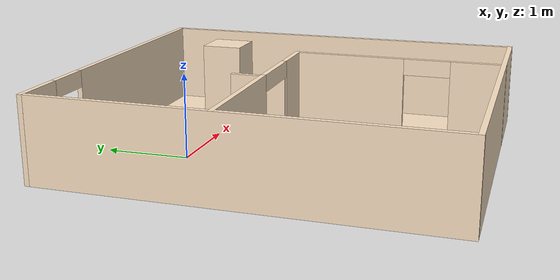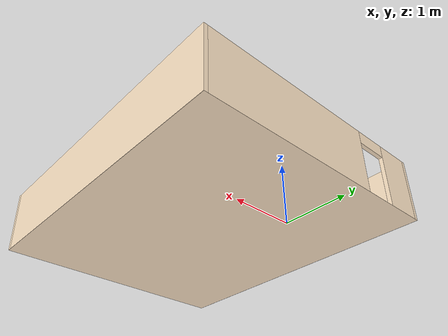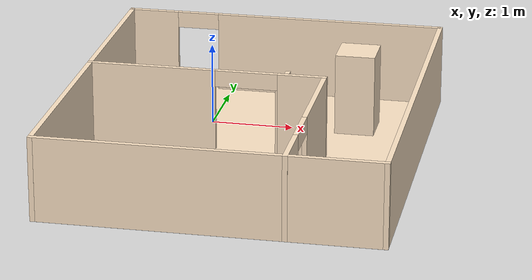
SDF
<?xml version='1.0'?>
<sdf version='1.7'>
  <model name='wall_scaled'>
    <!-- 모델 전체 포즈 (스케일링 적용) -->
    <pose>0.665984 -1.08792 0 0 -0 0</pose>

    <!-- 바닥 링크 -->
    <link name="floor">
      <collision name="floor_collision">
        <geometry>
          <box>
            <size>4.0 4.7 0.0004</size>
          </box>
        </geometry>
        <pose>0 0.000834 0.0 0 0 0</pose>
      </collision>
      <visual name="floor_visual">
        <geometry>
          <box>
            <size>4.0 4.7 0.0004</size> <!-- 동일 -->
          </box>
        </geometry>
        <material>
          <script>
            <uri>file://media/materials/scripts/gazebo.material</uri>
            <name>Gazebo/Grey</name> <!-- 벽과 같은 색상 -->
          </script>
          <ambient>1 0.901961 0.780392 1</ambient>
        </material>
        <pose>0 0.000834 0.0 0 0 0</pose> <!-- 동일 -->
      </visual>
    </link>

    <!-- Wall_11 링크 -->
    <link name='Wall_11'>
      <collision name='Wall_11_Collision'>
        <geometry>
          <box>
            <size>4.7 0.06 1.0</size>
          </box>
        </geometry>
        <pose>0 0 0.5 0 -0 0</pose>
      </collision>
      <visual name='Wall_11_Visual'>
        <pose>0 0 0.5 0 -0 0</pose> <!-- 동일 -->
        <geometry>
          <box>
            <size>4.7 0.06 1.0</size> <!-- 동일 -->
          </box>
        </geometry>
        <material>
          <script>
            <uri>file://media/materials/scripts/gazebo.material</uri>
            <name>Gazebo/Grey</name>
          </script>
          <ambient>1 0.901961 0.780392 1</ambient>
        </material>
        <meta>
          <layer>0</layer>
        </meta>
      </visual>
      <pose>-1.97532 0.000834 0 0 -0 -1.5708</pose> <!-- x:-4.9383*0.4≈-1.97532, y:0.002085*0.4≈0.000834, z:0*0.4=0, yaw:-1.5708 -->
    </link>

    <!-- Wall_13 링크 -->
    <link name='Wall_13'>
      <collision name='Wall_13_Collision'>
        <geometry>
          <box>
            <size>4.7 0.06 1.0</size> <!-- 동일 -->
          </box>
        </geometry>
        <pose>0 0 0.5 0 -0 0</pose> <!-- 동일 -->
      </collision>
      <visual name='Wall_13_Visual'>
        <pose>0 0 0.5 0 -0 0</pose> <!-- 동일 -->
        <geometry>
          <box>
            <size>4.7 0.06 1.0</size> <!-- 동일 -->
          </box>
        </geometry>
        <material>
          <script>
            <uri>file://media/materials/scripts/gazebo.material</uri>
            <name>Gazebo/Grey</name>
          </script>
          <ambient>1 0.901961 0.780392 1</ambient>
        </material>
        <meta>
          <layer>0</layer>
        </meta>
      </visual>
      <pose>1.97532 0.000834 0 0 -0 -1.5708</pose> <!-- x:4.9383*0.4≈1.97532, y:0.002085*0.4≈0.000834, yaw:-1.5708 -->
    </link>

    <!-- Wall_17 링크 -->
    <link name='Wall_17'>
      <collision name='Wall_17_Collision'>
        <geometry>
          <box>
            <size>4.01064 0.06 1.0</size>
          </box>
        </geometry>
        <pose>0 0 0.5 0 -0 0</pose> <!-- 동일 -->
      </collision>
      <visual name='Wall_17_Visual'>
        <pose>0 0 0.5 0 -0 0</pose> <!-- 동일 -->
        <geometry>
          <box>
            <size>4.01064 0.06 1.0</size> <!-- 동일 -->
          </box>
        </geometry>
        <material>
          <script>
            <uri>file://media/materials/scripts/gazebo.material</uri>
            <name>Gazebo/Grey</name>
          </script>
          <ambient>1 0.901961 0.780392 1</ambient>
        </material>
        <meta>
          <layer>0</layer>
        </meta>
      </visual>
      <pose>0 -2.31916 0 0 -0 0</pose>
    </link>

    <!-- Wall_25 링크 -->
    <link name='Wall_25'>
      <pose>0.86568 -1.050836 0 0 -0 1.5708</pose> <!-- x:2.1642*0.4≈0.86568, y:-2.62709*0.4≈-1.050836, yaw:1.5708 -->

      <!-- Wall_25_Visual_0 -->
      <visual name='Wall_25_Visual_0'>
        <pose>-0.97362 0 0.5 0 -0 0</pose>
        <geometry>
          <box>
            <size>0.652764 0.06 1.0</size>
          </box>
        </geometry>
        <material>
          <script>
            <uri>file://media/materials/scripts/gazebo.material</uri>
            <name>Gazebo/Grey</name>
          </script>
          <ambient>1 0.901961 0.780392 1</ambient>
        </material>
        <meta>
          <layer>0</layer>
        </meta>
      </visual>

      <!-- Wall_25_Collision_0 -->
      <collision name='Wall_25_Collision_0'>
        <geometry>
          <box>
            <size>0.652764 0.06 1.0</size> <!-- 동일 -->
          </box>
        </geometry>
        <pose>-0.97362 0 0.5 0 -0 0</pose> <!-- 동일 -->
      </collision>

      <!-- Wall_25_Visual_1 -->
      <visual name='Wall_25_Visual_1'>
        <pose>0.60752 0 0.5 0 -0 0</pose>
        <geometry>
          <box>
            <size>1.38496 0.06 1.0</size>
          </box>
        </geometry>
        <material>
          <script>
            <uri>file://media/materials/scripts/gazebo.material</uri>
            <name>Gazebo/Grey</name>
          </script>
          <ambient>1 0.901961 0.780392 1</ambient>
        </material>
        <meta>
          <layer>0</layer>
        </meta>
      </visual>

      <!-- Wall_25_Collision_1 -->
      <collision name='Wall_25_Collision_1'>
        <geometry>
          <box>
            <size>1.38496 0.06 1.0</size> <!-- 동일 -->
          </box>
        </geometry>
        <pose>0.60752 0 0.5 0 -0 0</pose> <!-- 동일 -->
      </collision>

      <!-- Wall_25_Visual_2 -->
      <visual name='Wall_25_Visual_2'>
        <pose>-0.366099 0 0.9 0 -0 0</pose>
        <geometry>
          <box>
            <size>0.562276 0.06 0.2</size>
          </box>
        </geometry>
        <material>
          <script>
            <uri>file://media/materials/scripts/gazebo.material</uri>
            <name>Gazebo/Grey</name>
          </script>
          <ambient>1 0.901961 0.780392 1</ambient>
        </material>
        <meta>
          <layer>0</layer>
        </meta>
      </visual>

      <!-- Wall_25_Collision_2 -->
      <collision name='Wall_25_Collision_2'>
        <geometry>
          <box>
            <size>0.562276 0.06 0.2</size> <!-- 동일 -->
          </box>
        </geometry>
        <pose>-0.366099 0 0.9 0 -0 0</pose> <!-- 동일 -->
      </collision>
    </link>

    <!-- Wall_26 링크 -->
    <link name='Wall_26'>
      <pose>-0.55432 0.219166 0 0 -0 3.14159</pose> <!-- x:-1.3858*0.4≈-0.55432, y:0.547915*0.4≈0.219166, yaw:3.14159 -->

      <collision name='Wall_26_Collision_0'>
        <geometry>
          <box>
            <size>0.588512 0.06 1.0</size>
          </box>
        </geometry>
        <pose>-1.155744 0 0.5 0 -0 0</pose>
      </collision>
      <visual name='Wall_26_Visual_0'>
        <pose>-1.155744 0 0.5 0 -0 0</pose> <!-- 동일 -->
        <geometry>
          <box>
            <size>0.588512 0.06 1.0</size> <!-- 동일 -->
          </box>
        </geometry>
        <material>
          <script>
            <uri>file://media/materials/scripts/gazebo.material</uri>
            <name>Gazebo/Grey</name>
          </script>
          <ambient>1 0.901961 0.780392 1</ambient>
        </material>
        <meta>
          <layer>0</layer>
        </meta>
      </visual>

      <collision name='Wall_26_Collision_1'>
        <geometry>
          <box>
            <size>1.563116 0.06 1.0</size>
          </box>
        </geometry>
        <pose>0.668444 0 0.5 0 -0 3.14159</pose> <!-- x:0.668444, y:0, z:0.5, yaw:3.14159 -->
      </collision>
      <visual name='Wall_26_Visual_1'>
        <pose>0.668444 0 0.5 0 -0 3.14159</pose> <!-- x:1.67111*0.4≈0.668444, y:0, z:1.25*0.4=0.5, yaw:3.14159 -->
        <geometry>
          <box>
            <size>1.563116 0.06 1.0</size> <!-- 동일 -->
          </box>
        </geometry>
        <material>
          <script>
            <uri>file://media/materials/scripts/gazebo.material</uri>
            <name>Gazebo/Grey</name>
          </script>
          <ambient>1 0.901961 0.780392 1</ambient>
        </material>
        <meta>
          <layer>0</layer>
        </meta>
      </visual>

      <collision name='Wall_26_Collision_2'>
        <geometry>
          <box>
            <size>0.748372 0.06 0.2</size>
          </box>
        </geometry>
        <pose>-0.487298 0 0.9 0 -0 0</pose>
      </collision>
      <visual name='Wall_26_Visual_2'>
        <pose>-0.487298 0 0.9 0 -0 0</pose> <!-- 동일 -->
        <geometry>
          <box>
            <size>0.748372 0.06 0.2</size> <!-- 동일 -->
          </box>
        </geometry>
        <material>
          <script>
            <uri>file://media/materials/scripts/gazebo.material</uri>
            <name>Gazebo/Grey</name>
          </script>
          <ambient>1 0.901961 0.780392 1</ambient>
        </material>
        <meta>
          <layer>0</layer>
        </meta>
      </visual>
    </link>

    <!-- Wall_28 링크 -->
    <link name='Wall_28'>
      <collision name='Wall_28_Collision'>
        <geometry>
          <box>
            <size>0.7 0.06 0.8</size>
          </box>
        </geometry>
        <pose>0 0 0.4 0 -0 0</pose>
      </collision>
      <visual name='Wall_28_Visual'>
        <pose>0 0 0.4 0 -0 0</pose> <!-- 동일 -->
        <geometry>
          <box>
            <size>0.7 0.06 0.8</size> <!-- 동일 -->
          </box>
        </geometry>
        <material>
          <script>
            <uri>file://media/materials/scripts/gazebo.material</uri>
            <name>Gazebo/Grey</name>
          </script>
          <ambient>1 0.901961 0.780392 1</ambient>
        </material>
        <meta>
          <layer>0</layer>
        </meta>
      </visual>
      <pose>0.3092168 0.55352 0 0 -0 1.5708</pose> <!-- x:0.773042*0.4≈0.3092168, y:1.3838*0.4≈0.55352, yaw:1.5708 -->
    </link>

    <!-- Wall_32 링크 -->
    <link name='Wall_32'>
      <collision name='Wall_32_Collision'>
        <geometry>
          <box>
            <size>0.5 0.48 1.0</size>
          </box>
        </geometry>
        <pose>0 0 0.5 0 -0 0</pose>
      </collision>
      <visual name='Wall_32_Visual'>
        <pose>0 0 0.5 0 -0 0</pose> <!-- 동일 -->
        <geometry>
          <box>
            <size>0.5 0.48 1.0</size> <!-- 동일 -->
          </box>
        </geometry>
        <material>
          <script>
            <uri>file://media/materials/scripts/gazebo.material</uri>
            <name>Gazebo/Grey</name>
          </script>
          <ambient>1 0.901961 0.780392 1</ambient>
        </material>
        <meta>
          <layer>0</layer>
        </meta>
      </visual>
      <pose>1.106388 1.254576 0 0 -0 -1.5708</pose> <!-- x:2.76597*0.4≈1.106388, y:3.13644*0.4≈1.254576, yaw:-1.5708 -->
    </link>

    <!-- Wall_9 링크 -->
    <link name='Wall_9'>
      <pose>0 2.32083 0 0 -0 0</pose>

      <visual name='Wall_9_Visual_0'>
        <pose>-1.68861 0 0.5 0 -0 0</pose>
        <geometry>
          <box>
            <size>0.633416 0.06 1.0</size>
          </box>
        </geometry>
        <material>
          <script>
            <uri>file://media/materials/scripts/gazebo.material</uri>
            <name>Gazebo/Grey</name>
          </script>
          <ambient>1 0.901961 0.780392 1</ambient>
        </material>
        <meta>
          <layer>0</layer>
        </meta>
      </visual>

      <collision name='Wall_9_Collision_0'>
        <geometry>
          <box>
            <size>0.633416 0.06 1.0</size> <!-- 동일 -->
          </box>
        </geometry>
        <pose>-1.68861 0 0.5 0 -0 0</pose> <!-- 동일 -->
      </collision>

      <visual name='Wall_9_Visual_1'>
        <pose>0.57762 0 0.5 0 -0 0</pose>
        <geometry>
          <box>
            <size>2.855404 0.06 1.0</size>
          </box>
        </geometry>
        <material>
          <script>
            <uri>file://media/materials/scripts/gazebo.material</uri>
            <name>Gazebo/Grey</name>
          </script>
          <ambient>1 0.901961 0.780392 1</ambient>
        </material>
        <meta>
          <layer>0</layer>
        </meta>
      </visual>

      <collision name='Wall_9_Collision_1'>
        <geometry>
          <box>
            <size>2.855404 0.06 1.0</size> <!-- 동일 -->
          </box>
        </geometry>
        <pose>0.57762 0 0.5 0 -0 0</pose> <!-- 동일 -->
      </collision>

      <visual name='Wall_9_Visual_2'>
        <pose>-1.11099 0 0.9 0 -0 0</pose>
        <geometry>
          <box>
            <size>0.521824 0.06 0.2</size>
          </box>
        </geometry>
        <material>
          <script>
            <uri>file://media/materials/scripts/gazebo.material</uri>
            <name>Gazebo/Grey</name>
          </script>
          <ambient>1 0.901961 0.780392 1</ambient>
        </material>
        <meta>
          <layer>0</layer>
        </meta>
      </visual>

      <collision name='Wall_9_Collision_2'>
        <geometry>
          <box>
            <size>0.521824 0.06 0.2</size> <!-- 동일 -->
          </box>
        </geometry>
        <pose>-1.11099 0 0.9 0 -0 0</pose> <!-- 동일 -->
      </collision>
    </link>

    <!-- 전체 모델을 정적으로 설정 -->
    <static>true</static>
  </model>
</sdf>
